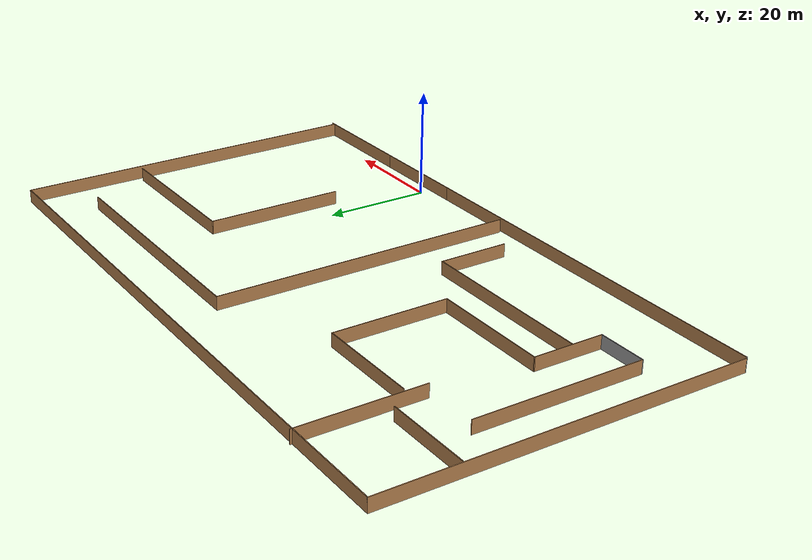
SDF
<?xml version='1.0'?>
<sdf version='1.7'>
  <model name='testword'>
    <pose>-22.9243 31.4808 0 0 -0 0</pose>
    <link name='Wall_0'>
      <collision name='Wall_0_Collision'>
        <geometry>
          <box>
            <size>19.5 0.15 2.5</size>
          </box>
        </geometry>
        <pose>0 0 1.25 0 -0 0</pose>
      </collision>
      <visual name='Wall_0_Visual'>
        <pose>0 0 1.25 0 -0 0</pose>
        <geometry>
          <box>
            <size>19.5 0.15 2.5</size>
          </box>
        </geometry>
        <material>
          <script>
            <uri>file://media/materials/scripts/gazebo.material</uri>
            <name>Gazebo/Wood</name>
          </script>
          <ambient>1 1 1 1</ambient>
        </material>
        <meta>
          <layer>0</layer>
        </meta>
      </visual>
      <pose>27.3893 -33.7108 0 0 -0 0</pose>
    </link>
    <link name='Wall_1'>
      <collision name='Wall_1_Collision'>
        <geometry>
          <box>
            <size>0.15 0.15 2.5</size>
          </box>
        </geometry>
        <pose>0 0 1.25 0 -0 0</pose>
      </collision>
      <visual name='Wall_1_Visual'>
        <pose>0 0 1.25 0 -0 0</pose>
        <geometry>
          <box>
            <size>0.15 0.15 2.5</size>
          </box>
        </geometry>
        <material>
          <script>
            <uri>file://media/materials/scripts/gazebo.material</uri>
            <name>Gazebo/Grey</name>
          </script>
          <ambient>1 1 1 1</ambient>
        </material>
        <meta>
          <layer>0</layer>
        </meta>
      </visual>
      <pose>37.0643 -33.7108 0 0 -0 0</pose>
    </link>
    <link name='Wall_10'>
      <collision name='Wall_10_Collision'>
        <geometry>
          <box>
            <size>0.16 0.15 2.5</size>
          </box>
        </geometry>
        <pose>0 0 1.25 0 -0 0</pose>
      </collision>
      <visual name='Wall_10_Visual'>
        <pose>0 0 1.25 0 -0 0</pose>
        <geometry>
          <box>
            <size>0.16 0.15 2.5</size>
          </box>
        </geometry>
        <material>
          <script>
            <uri>file://media/materials/scripts/gazebo.material</uri>
            <name>Gazebo/Grey</name>
          </script>
          <ambient>1 1 1 1</ambient>
        </material>
        <meta>
          <layer>0</layer>
        </meta>
      </visual>
      <pose>-58.8782 33.3867 0 0 -0 0</pose>
    </link>
    <link name='Wall_11'>
      <collision name='Wall_11_Collision'>
        <geometry>
          <box>
            <size>117.25 0.15 2.5</size>
          </box>
        </geometry>
        <pose>0 0 1.25 0 -0 0</pose>
      </collision>
      <visual name='Wall_11_Visual'>
        <pose>0 0 1.25 0 -0 0</pose>
        <geometry>
          <box>
            <size>117.25 0.15 2.5</size>
          </box>
        </geometry>
        <material>
          <script>
            <uri>file://media/materials/scripts/gazebo.material</uri>
            <name>Gazebo/Wood</name>
          </script>
          <ambient>1 1 1 1</ambient>
        </material>
        <meta>
          <layer>0</layer>
        </meta>
      </visual>
      <pose>-0.32321 33.3867 0 0 -0 0</pose>
    </link>
    <link name='Wall_12'>
      <collision name='Wall_12_Collision'>
        <geometry>
          <box>
            <size>67.25 0.15 2.5</size>
          </box>
        </geometry>
        <pose>0 0 1.25 0 -0 0</pose>
      </collision>
      <visual name='Wall_12_Visual'>
        <pose>0 0 1.25 0 -0 0</pose>
        <geometry>
          <box>
            <size>67.25 0.15 2.5</size>
          </box>
        </geometry>
        <material>
          <script>
            <uri>file://media/materials/scripts/gazebo.material</uri>
            <name>Gazebo/Wood</name>
          </script>
          <ambient>1 1 1 1</ambient>
        </material>
        <meta>
          <layer>0</layer>
        </meta>
      </visual>
      <pose>58.2268 -0.163329 0 0 -0 -1.5708</pose>
    </link>
    <link name='Wall_14'>
      <collision name='Wall_14_Collision'>
        <geometry>
          <box>
            <size>16.25 0.15 2.5</size>
          </box>
        </geometry>
        <pose>0 0 1.25 0 -0 0</pose>
      </collision>
      <visual name='Wall_14_Visual'>
        <pose>0 0 1.25 0 -0 0</pose>
        <geometry>
          <box>
            <size>16.25 0.15 2.5</size>
          </box>
        </geometry>
        <material>
          <script>
            <uri>file://media/materials/scripts/gazebo.material</uri>
            <name>Gazebo/Wood</name>
          </script>
          <ambient>1 1 1 1</ambient>
        </material>
        <meta>
          <layer>0</layer>
        </meta>
      </visual>
      <pose>-50.5454 18.3513 0 0 -0 0</pose>
    </link>
    <link name='Wall_17'>
      <collision name='Wall_17_Collision'>
        <geometry>
          <box>
            <size>23.25 0.15 2.5</size>
          </box>
        </geometry>
        <pose>0 0 1.25 0 -0 0</pose>
      </collision>
      <visual name='Wall_17_Visual'>
        <pose>0 0 1.25 0 -0 0</pose>
        <geometry>
          <box>
            <size>23.25 0.15 2.5</size>
          </box>
        </geometry>
        <material>
          <script>
            <uri>file://media/materials/scripts/gazebo.material</uri>
            <name>Gazebo/Wood</name>
          </script>
          <ambient>1 1 1 1</ambient>
        </material>
        <meta>
          <layer>0</layer>
        </meta>
      </visual>
      <pose>-39.8315 22.1919 0 0 -0 1.5708</pose>
    </link>
    <link name='Wall_19'>
      <collision name='Wall_19_Collision'>
        <geometry>
          <box>
            <size>19.75 0.15 2.5</size>
          </box>
        </geometry>
        <pose>0 0 1.25 0 -0 0</pose>
      </collision>
      <visual name='Wall_19_Visual'>
        <pose>0 0 1.25 0 -0 0</pose>
        <geometry>
          <box>
            <size>19.75 0.15 2.5</size>
          </box>
        </geometry>
        <material>
          <script>
            <uri>file://media/materials/scripts/gazebo.material</uri>
            <name>Gazebo/Wood</name>
          </script>
          <ambient>1 1 1 1</ambient>
        </material>
        <meta>
          <layer>0</layer>
        </meta>
      </visual>
      <pose>-29.3732 14.5922 0 0 -0 0</pose>
    </link>
    <link name='Wall_20'>
      <collision name='Wall_20_Collision'>
        <geometry>
          <box>
            <size>21.75 0.15 2.5</size>
          </box>
        </geometry>
        <pose>0 0 1.25 0 -0 0</pose>
      </collision>
      <visual name='Wall_20_Visual'>
        <pose>0 0 1.25 0 -0 0</pose>
        <geometry>
          <box>
            <size>21.75 0.15 2.5</size>
          </box>
        </geometry>
        <material>
          <script>
            <uri>file://media/materials/scripts/gazebo.material</uri>
            <name>Gazebo/Wood</name>
          </script>
          <ambient>1 1 1 1</ambient>
        </material>
        <meta>
          <layer>0</layer>
        </meta>
      </visual>
      <pose>-19.5732 3.79216 0 0 -0 -1.5708</pose>
    </link>
    <link name='Wall_21'>
      <collision name='Wall_21_Collision'>
        <geometry>
          <box>
            <size>22.5 0.15 2.5</size>
          </box>
        </geometry>
        <pose>0 0 1.25 0 -0 0</pose>
      </collision>
      <visual name='Wall_21_Visual'>
        <pose>0 0 1.25 0 -0 0</pose>
        <geometry>
          <box>
            <size>22.5 0.15 2.5</size>
          </box>
        </geometry>
        <material>
          <script>
            <uri>file://media/materials/scripts/gazebo.material</uri>
            <name>Gazebo/Wood</name>
          </script>
          <ambient>1 1 1 1</ambient>
        </material>
        <meta>
          <layer>0</layer>
        </meta>
      </visual>
      <pose>-30.7482 -7.00785 0 0 -0 3.14159</pose>
    </link>
    <link name='Wall_22'>
      <collision name='Wall_22_Collision'>
        <geometry>
          <box>
            <size>13.25 0.15 2.5</size>
          </box>
        </geometry>
        <pose>0 0 1.25 0 -0 0</pose>
      </collision>
      <visual name='Wall_22_Visual'>
        <pose>0 0 1.25 0 -0 0</pose>
        <geometry>
          <box>
            <size>13.25 0.15 2.5</size>
          </box>
        </geometry>
        <material>
          <script>
            <uri>file://media/materials/scripts/gazebo.material</uri>
            <name>Gazebo/Wood</name>
          </script>
          <ambient>1 1 1 1</ambient>
        </material>
        <meta>
          <layer>0</layer>
        </meta>
      </visual>
      <pose>-41.9232 -13.5578 0 0 -0 -1.5708</pose>
    </link>
    <link name='Wall_23'>
      <collision name='Wall_23_Collision'>
        <geometry>
          <box>
            <size>9.25 0.15 2.5</size>
          </box>
        </geometry>
        <pose>0 0 1.25 0 -0 0</pose>
      </collision>
      <visual name='Wall_23_Visual'>
        <pose>0 0 1.25 0 -0 0</pose>
        <geometry>
          <box>
            <size>9.25 0.15 2.5</size>
          </box>
        </geometry>
        <material>
          <script>
            <uri>file://media/materials/scripts/gazebo.material</uri>
            <name>Gazebo/Grey</name>
          </script>
          <ambient>1 1 1 1</ambient>
        </material>
        <meta>
          <layer>0</layer>
        </meta>
      </visual>
      <pose>-46.4732 -20.1078 0 0 -0 3.14159</pose>
    </link>
    <link name='Wall_24'>
      <collision name='Wall_24_Collision'>
        <geometry>
          <box>
            <size>31.5 0.15 2.5</size>
          </box>
        </geometry>
        <pose>0 0 1.25 0 -0 0</pose>
      </collision>
      <visual name='Wall_24_Visual'>
        <pose>0 0 1.25 0 -0 0</pose>
        <geometry>
          <box>
            <size>31.5 0.15 2.5</size>
          </box>
        </geometry>
        <material>
          <script>
            <uri>file://media/materials/scripts/gazebo.material</uri>
            <name>Gazebo/Wood</name>
          </script>
          <ambient>1 1 1 1</ambient>
        </material>
        <meta>
          <layer>0</layer>
        </meta>
      </visual>
      <pose>-51.0232 -4.43285 0 0 -0 1.5708</pose>
    </link>
    <link name='Wall_26'>
      <collision name='Wall_26_Collision'>
        <geometry>
          <box>
            <size>34 0.15 2.5</size>
          </box>
        </geometry>
        <pose>0 0 1.25 0 -0 0</pose>
      </collision>
      <visual name='Wall_26_Visual'>
        <pose>0 0 1.25 0 -0 0</pose>
        <geometry>
          <box>
            <size>34 0.15 2.5</size>
          </box>
        </geometry>
        <material>
          <script>
            <uri>file://media/materials/scripts/gazebo.material</uri>
            <name>Gazebo/Wood</name>
          </script>
          <ambient>1 1 1 1</ambient>
        </material>
        <meta>
          <layer>0</layer>
        </meta>
      </visual>
      <pose>-24.8817 -14.3765 0 0 -0 0</pose>
    </link>
    <link name='Wall_27'>
      <collision name='Wall_27_Collision'>
        <geometry>
          <box>
            <size>13.25 0.15 2.5</size>
          </box>
        </geometry>
        <pose>0 0 1.25 0 -0 0</pose>
      </collision>
      <visual name='Wall_27_Visual'>
        <pose>0 0 1.25 0 -0 0</pose>
        <geometry>
          <box>
            <size>13.25 0.15 2.5</size>
          </box>
        </geometry>
        <material>
          <script>
            <uri>file://media/materials/scripts/gazebo.material</uri>
            <name>Gazebo/Wood</name>
          </script>
          <ambient>1 1 1 1</ambient>
        </material>
        <meta>
          <layer>0</layer>
        </meta>
      </visual>
      <pose>-7.95667 -20.9265 0 0 -0 -1.5708</pose>
    </link>
    <link name='Wall_29'>
      <collision name='Wall_29_Collision'>
        <geometry>
          <box>
            <size>57.25 0.15 2.5</size>
          </box>
        </geometry>
        <pose>0 0 1.25 0 -0 0</pose>
      </collision>
      <visual name='Wall_29_Visual'>
        <pose>0 0 1.25 0 -0 0</pose>
        <geometry>
          <box>
            <size>57.25 0.15 2.5</size>
          </box>
        </geometry>
        <material>
          <script>
            <uri>file://media/materials/scripts/gazebo.material</uri>
            <name>Gazebo/Wood</name>
          </script>
          <ambient>1 1 1 1</ambient>
        </material>
        <meta>
          <layer>0</layer>
        </meta>
      </visual>
      <pose>0.658779 -4.59033 0 0 -0 1.5708</pose>
    </link>
    <link name='Wall_30'>
      <collision name='Wall_30_Collision'>
        <geometry>
          <box>
            <size>48 0.15 2.5</size>
          </box>
        </geometry>
        <pose>0 0 1.25 0 -0 0</pose>
      </collision>
      <visual name='Wall_30_Visual'>
        <pose>0 0 1.25 0 -0 0</pose>
        <geometry>
          <box>
            <size>48 0.15 2.5</size>
          </box>
        </geometry>
        <material>
          <script>
            <uri>file://media/materials/scripts/gazebo.material</uri>
            <name>Gazebo/Wood</name>
          </script>
          <ambient>1 1 1 1</ambient>
        </material>
        <meta>
          <layer>0</layer>
        </meta>
      </visual>
      <pose>24.5838 23.9597 0 0 -0 0</pose>
    </link>
    <link name='Wall_32'>
      <collision name='Wall_32_Collision'>
        <geometry>
          <box>
            <size>29.75 0.15 2.5</size>
          </box>
        </geometry>
        <pose>0 0 1.25 0 -0 0</pose>
      </collision>
      <visual name='Wall_32_Visual'>
        <pose>0 0 1.25 0 -0 0</pose>
        <geometry>
          <box>
            <size>29.75 0.15 2.5</size>
          </box>
        </geometry>
        <material>
          <script>
            <uri>file://media/materials/scripts/gazebo.material</uri>
            <name>Gazebo/Wood</name>
          </script>
          <ambient>1 1 1 1</ambient>
        </material>
        <meta>
          <layer>0</layer>
        </meta>
      </visual>
      <pose>42.1502 10.9711 0 0 -0 3.14159</pose>
    </link>
    <link name='Wall_33'>
      <collision name='Wall_33_Collision'>
        <geometry>
          <box>
            <size>26 0.15 2.5</size>
          </box>
        </geometry>
        <pose>0 0 1.25 0 -0 0</pose>
      </collision>
      <visual name='Wall_33_Visual'>
        <pose>0 0 1.25 0 -0 0</pose>
        <geometry>
          <box>
            <size>26 0.15 2.5</size>
          </box>
        </geometry>
        <material>
          <script>
            <uri>file://media/materials/scripts/gazebo.material</uri>
            <name>Gazebo/Wood</name>
          </script>
          <ambient>1 1 1 1</ambient>
        </material>
        <meta>
          <layer>0</layer>
        </meta>
      </visual>
      <pose>27.3502 -1.95393 0 0 -0 -1.5708</pose>
    </link>
    <link name='Wall_4'>
      <collision name='Wall_4_Collision'>
        <geometry>
          <box>
            <size>22 0.15 2.5</size>
          </box>
        </geometry>
        <pose>0 0 1.25 0 -0 0</pose>
      </collision>
      <visual name='Wall_4_Visual'>
        <pose>0 0 1.25 0 -0 0</pose>
        <geometry>
          <box>
            <size>22 0.15 2.5</size>
          </box>
        </geometry>
        <material>
          <script>
            <uri>file://media/materials/scripts/gazebo.material</uri>
            <name>Gazebo/Wood</name>
          </script>
          <ambient>1 1 1 1</ambient>
        </material>
        <meta>
          <layer>0</layer>
        </meta>
      </visual>
      <pose>47.9893 -33.7108 0 0 -0 0</pose>
    </link>
    <link name='Wall_7'>
      <collision name='Wall_7_Collision'>
        <geometry>
          <box>
            <size>76.5 0.15 2.5</size>
          </box>
        </geometry>
        <pose>0 0 1.25 0 -0 0</pose>
      </collision>
      <visual name='Wall_7_Visual'>
        <pose>0 0 1.25 0 -0 0</pose>
        <geometry>
          <box>
            <size>76.5 0.15 2.5</size>
          </box>
        </geometry>
        <material>
          <script>
            <uri>file://media/materials/scripts/gazebo.material</uri>
            <name>Gazebo/Wood</name>
          </script>
          <ambient>1 1 1 1</ambient>
        </material>
        <meta>
          <layer>0</layer>
        </meta>
      </visual>
      <pose>-20.4607 -33.7108 0 0 -0 3.14159</pose>
    </link>
    <link name='Wall_8'>
      <collision name='Wall_8_Collision'>
        <geometry>
          <box>
            <size>0.5 0.15 2.5</size>
          </box>
        </geometry>
        <pose>0 0 1.25 0 -0 0</pose>
      </collision>
      <visual name='Wall_8_Visual'>
        <pose>0 0 1.25 0 -0 0</pose>
        <geometry>
          <box>
            <size>0.5 0.15 2.5</size>
          </box>
        </geometry>
        <material>
          <script>
            <uri>file://media/materials/scripts/gazebo.material</uri>
            <name>Gazebo/Grey</name>
          </script>
          <ambient>1 1 1 1</ambient>
        </material>
        <meta>
          <layer>0</layer>
        </meta>
      </visual>
      <pose>-58.7595 -33.5871 0 0 -0 2.35619</pose>
    </link>
    <link name='Wall_9'>
      <collision name='Wall_9_Collision'>
        <geometry>
          <box>
            <size>67 0.15 2.5</size>
          </box>
        </geometry>
        <pose>0 0 1.25 0 -0 0</pose>
      </collision>
      <visual name='Wall_9_Visual'>
        <pose>0 0 1.25 0 -0 0</pose>
        <geometry>
          <box>
            <size>67 0.15 2.5</size>
          </box>
        </geometry>
        <material>
          <script>
            <uri>file://media/materials/scripts/gazebo.material</uri>
            <name>Gazebo/Wood</name>
          </script>
          <ambient>1 1 1 1</ambient>
        </material>
        <meta>
          <layer>0</layer>
        </meta>
      </visual>
      <pose>-58.8832 -0.038329 0 0 -0 1.5708</pose>
    </link>
    <static>1</static>
  </model>
</sdf>
